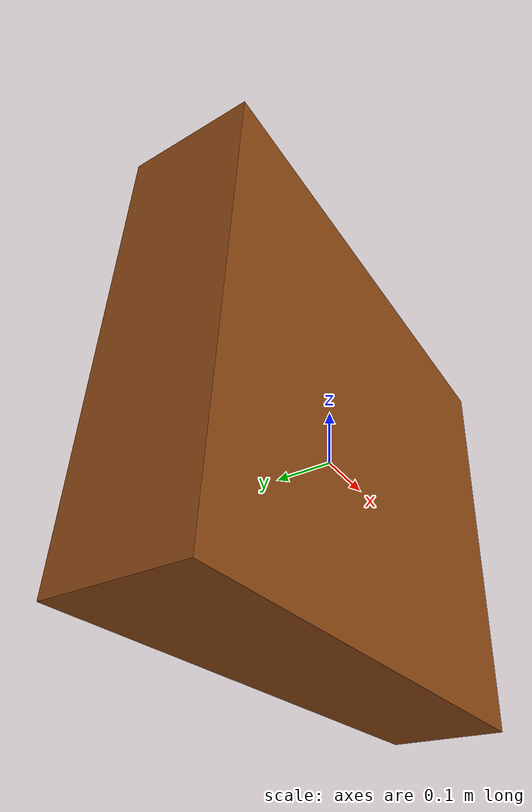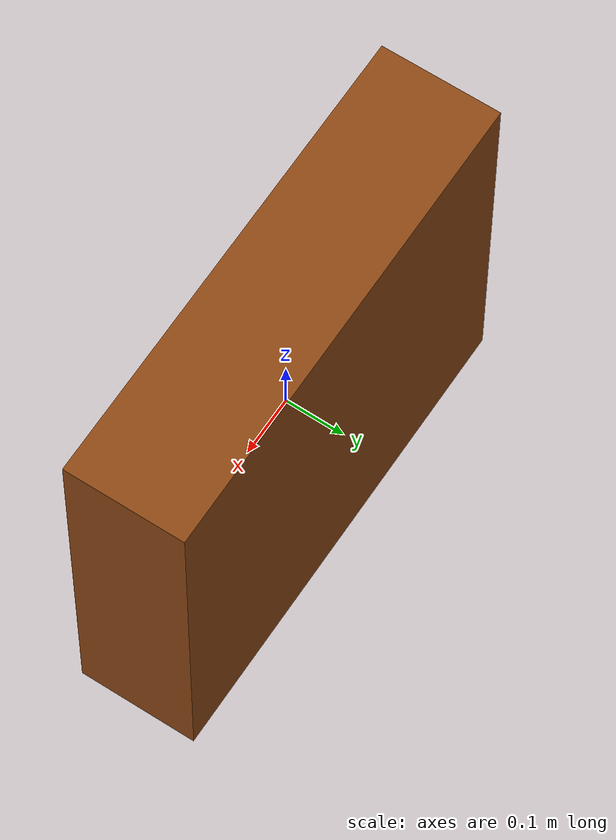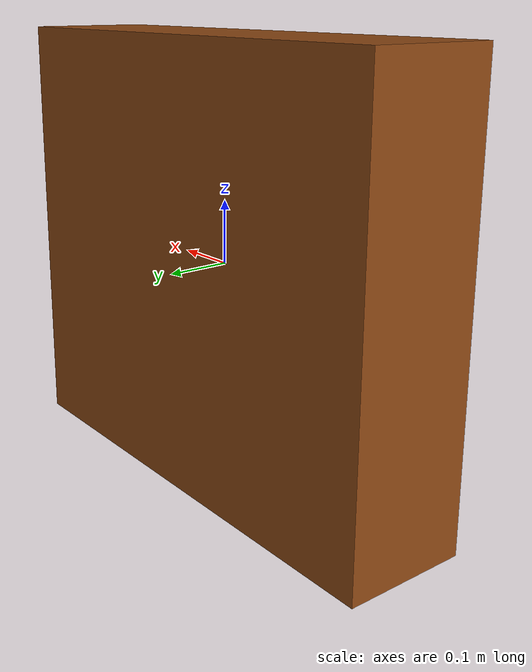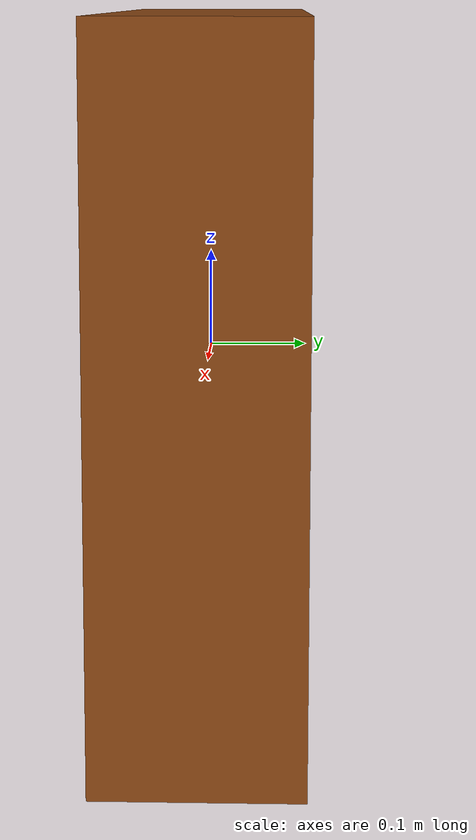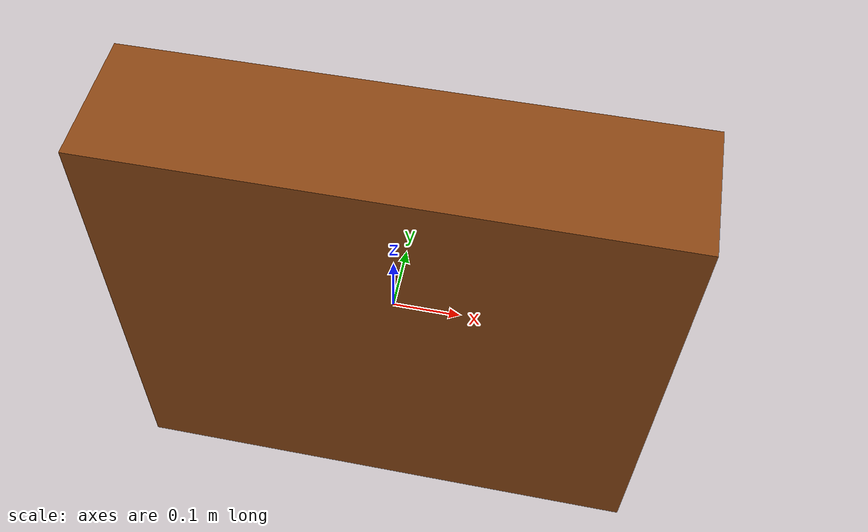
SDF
<?xml version='1.0' encoding='utf-8'?>
<sdf version="1.9">
  <model name="unexpected_pallet">
    <static>true</static>
    <link name="link">
      <collision name="collision">
        <geometry>
          <box>
            <size>0.8 0.2 0.7</size>
          </box>
        </geometry>
      </collision>
      <visual name="visual">
        <geometry>
          <box>
            <size>0.8 0.2 0.7</size>
          </box>
        </geometry>
        <material>
          <diffuse>0.55 0.28 0.08 1</diffuse>
          <ambient>0.55 0.28 0.08 1</ambient>
        </material>
      </visual>
    </link>
  </model>
</sdf>
